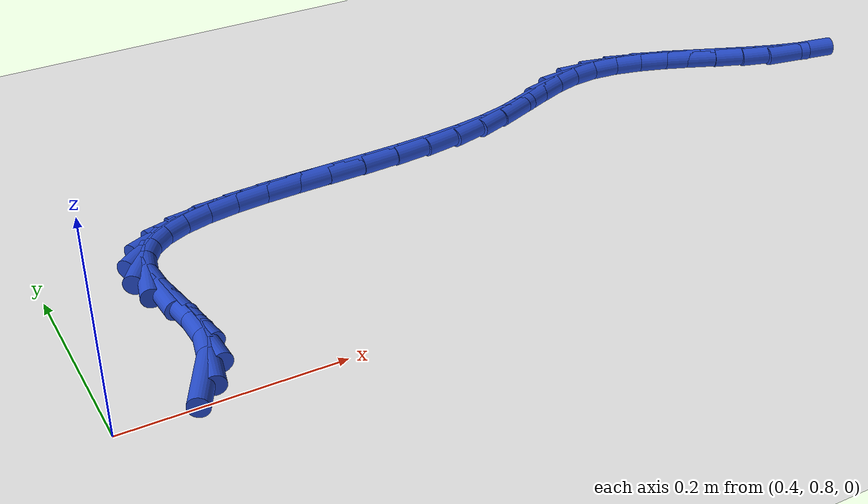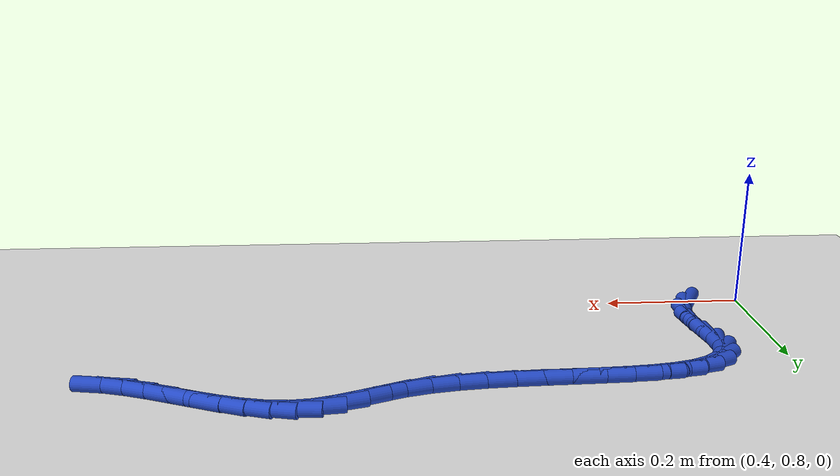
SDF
<sdf version="1.6">
 <world name="default">
  <model name="ground_plane">
   <static>1</static>
   <link name="link">
    <collision name="collision">
     <geometry><plane><normal>0 0 1</normal><size>100 100</size></plane></geometry>
     <surface><friction><ode><mu>100</mu><mu2>50</mu2></ode></friction></surface>
    </collision>
    <visual name="visual">
     <cast_shadows>0</cast_shadows>
     <geometry><plane><normal>0 0 1</normal><size>100 100</size></plane></geometry>
     <material>
      <script><uri>file://media/materials/scripts/gazebo.material</uri><name>Gazebo/WhiteGlow</name></script>
     </material>
    </visual>
   </link>
  </model>
  <model name="line">
   <link name="link_34">
    <pose>0.48436458336159793 0.8243326907768579 0.01 0 1.57 1.0998703822961402</pose>
    <collision name="collision">
     <geometry><cylinder><radius>0.01</radius><length>0.08</length></cylinder></geometry>
    </collision>
    <visual name="visual">
     <material>
      <script><name>Gazebo/Blue</name><uri>file://media/materials/scripts/gazebo.material</uri></script>
     </material>
     <geometry><cylinder><radius>0.01</radius><length>0.08</length></cylinder></geometry>
    </visual>
   </link>
   <link name="link_35">
    <pose>0.4961234506910881 0.8474286329743677 0.01 0 1.57 1.3525043392201155</pose>
    <collision name="collision">
     <geometry><cylinder><radius>0.01</radius><length>0.08</length></cylinder></geometry>
    </collision>
    <visual name="visual">
     <material>
      <script><name>Gazebo/Blue</name><uri>file://media/materials/scripts/gazebo.material</uri></script>
     </material>
     <geometry><cylinder><radius>0.01</radius><length>0.08</length></cylinder></geometry>
    </visual>
   </link>
   <link name="link_36">
    <pose>0.5018533617048805 0.8732592092014854 0.01 0 1.57 -1.5458113672183387</pose>
    <collision name="collision">
     <geometry><cylinder><radius>0.01</radius><length>0.08</length></cylinder></geometry>
    </collision>
    <visual name="visual">
     <material>
      <script><name>Gazebo/Blue</name><uri>file://media/materials/scripts/gazebo.material</uri></script>
     </material>
     <geometry><cylinder><radius>0.01</radius><length>0.08</length></cylinder></geometry>
    </visual>
   </link>
   <link name="link_37">
    <pose>0.5011351351879454 0.9019995823038233 0.01 0 1.57 -1.4193034929931134</pose>
    <collision name="collision">
     <geometry><cylinder><radius>0.01</radius><length>0.08</length></cylinder></geometry>
    </collision>
    <visual name="visual">
     <material>
      <script><name>Gazebo/Blue</name><uri>file://media/materials/scripts/gazebo.material</uri></script>
     </material>
     <geometry><cylinder><radius>0.01</radius><length>0.08</length></cylinder></geometry>
    </visual>
   </link>
   <link name="link_38">
    <pose>0.4965393665960186 0.9321036922990686 0.01 0 1.57 -1.409940151759371</pose>
    <collision name="collision">
     <geometry><cylinder><radius>0.01</radius><length>0.08</length></cylinder></geometry>
    </collision>
    <visual name="visual">
     <material>
      <script><name>Gazebo/Blue</name><uri>file://media/materials/scripts/gazebo.material</uri></script>
     </material>
     <geometry><cylinder><radius>0.01</radius><length>0.08</length></cylinder></geometry>
    </visual>
   </link>
   <link name="link_39">
    <pose>0.4917922642409274 0.9613601896374306 0.01 0 1.57 -1.5261320822971656</pose>
    <collision name="collision">
     <geometry><cylinder><radius>0.01</radius><length>0.08</length></cylinder></geometry>
    </collision>
    <visual name="visual">
     <material>
      <script><name>Gazebo/Blue</name><uri>file://media/materials/scripts/gazebo.material</uri></script>
     </material>
     <geometry><cylinder><radius>0.01</radius><length>0.08</length></cylinder></geometry>
    </visual>
   </link>
   <link name="link_40">
    <pose>0.4906214256611757 0.9875569813389942 0.01 0 1.57 1.3373394361693471</pose>
    <collision name="collision">
     <geometry><cylinder><radius>0.01</radius><length>0.08</length></cylinder></geometry>
    </collision>
    <visual name="visual">
     <material>
      <script><name>Gazebo/Blue</name><uri>file://media/materials/scripts/gazebo.material</uri></script>
     </material>
     <geometry><cylinder><radius>0.01</radius><length>0.08</length></cylinder></geometry>
    </visual>
   </link>
   <link name="link_41">
    <pose>0.4957473855238994 1.0091134001234727 0.01 0 1.57 0.9887500694723694</pose>
    <collision name="collision">
     <geometry><cylinder><radius>0.01</radius><length>0.08</length></cylinder></geometry>
    </collision>
    <visual name="visual">
     <material>
      <script><name>Gazebo/Blue</name><uri>file://media/materials/scripts/gazebo.material</uri></script>
     </material>
     <geometry><cylinder><radius>0.01</radius><length>0.08</length></cylinder></geometry>
    </visual>
   </link>
   <link name="link_42">
    <pose>0.5070228781272357 1.0262468817941888 0.01 0 1.57 0.6685071533585554</pose>
    <collision name="collision">
     <geometry><cylinder><radius>0.01</radius><length>0.08</length></cylinder></geometry>
    </collision>
    <visual name="visual">
     <material>
      <script><name>Gazebo/Blue</name><uri>file://media/materials/scripts/gazebo.material</uri></script>
     </material>
     <geometry><cylinder><radius>0.01</radius><length>0.08</length></cylinder></geometry>
    </visual>
   </link>
   <link name="link_43">
    <pose>0.5237935432515232 1.0394928090471414 0.01 0 1.57 0.42932225369989446</pose>
    <collision name="collision">
     <geometry><cylinder><radius>0.01</radius><length>0.08</length></cylinder></geometry>
    </collision>
    <visual name="visual">
     <material>
      <script><name>Gazebo/Blue</name><uri>file://media/materials/scripts/gazebo.material</uri></script>
     </material>
     <geometry><cylinder><radius>0.01</radius><length>0.08</length></cylinder></geometry>
    </visual>
   </link>
   <link name="link_44">
    <pose>0.5454050206771001 1.049386564578328 0.01 0 1.57 0.26773673978531026</pose>
    <collision name="collision">
     <geometry><cylinder><radius>0.01</radius><length>0.08</length></cylinder></geometry>
    </collision>
    <visual name="visual">
     <material>
      <script><name>Gazebo/Blue</name><uri>file://media/materials/scripts/gazebo.material</uri></script>
     </material>
     <geometry><cylinder><radius>0.01</radius><length>0.08</length></cylinder></geometry>
    </visual>
   </link>
   <link name="link_45">
    <pose>0.5712029501843049 1.0564635310837467 0.01 0 1.57 0.16206939965983158</pose>
    <collision name="collision">
     <geometry><cylinder><radius>0.01</radius><length>0.08</length></cylinder></geometry>
    </collision>
    <visual name="visual">
     <material>
      <script><name>Gazebo/Blue</name><uri>file://media/materials/scripts/gazebo.material</uri></script>
     </material>
     <geometry><cylinder><radius>0.01</radius><length>0.08</length></cylinder></geometry>
    </visual>
   </link>
   <link name="link_46">
    <pose>0.6005329715534757 1.0612590912593953 0.01 0 1.57 0.09440187548298841</pose>
    <collision name="collision">
     <geometry><cylinder><radius>0.01</radius><length>0.08</length></cylinder></geometry>
    </collision>
    <visual name="visual">
     <material>
      <script><name>Gazebo/Blue</name><uri>file://media/materials/scripts/gazebo.material</uri></script>
     </material>
     <geometry><cylinder><radius>0.01</radius><length>0.08</length></cylinder></geometry>
    </visual>
   </link>
   <link name="link_47">
    <pose>0.6327407245649517 1.0643086278012726 0.01 0 1.57 0.05335725142116658</pose>
    <collision name="collision">
     <geometry><cylinder><radius>0.01</radius><length>0.08</length></cylinder></geometry>
    </collision>
    <visual name="visual">
     <material>
      <script><name>Gazebo/Blue</name><uri>file://media/materials/scripts/gazebo.material</uri></script>
     </material>
     <geometry><cylinder><radius>0.01</radius><length>0.08</length></cylinder></geometry>
    </visual>
   </link>
   <link name="link_48">
    <pose>0.6671718489990706 1.066147523405376 0.01 0 1.57 0.032311888419340885</pose>
    <collision name="collision">
     <geometry><cylinder><radius>0.01</radius><length>0.08</length></cylinder></geometry>
    </collision>
    <visual name="visual">
     <material>
      <script><name>Gazebo/Blue</name><uri>file://media/materials/scripts/gazebo.material</uri></script>
     </material>
     <geometry><cylinder><radius>0.01</radius><length>0.08</length></cylinder></geometry>
    </visual>
   </link>
   <link name="link_49">
    <pose>0.703171984636171 1.0673111607677042 0.01 0 1.57 0.02772600261981497</pose>
    <collision name="collision">
     <geometry><cylinder><radius>0.01</radius><length>0.08</length></cylinder></geometry>
    </collision>
    <visual name="visual">
     <material>
      <script><name>Gazebo/Blue</name><uri>file://media/materials/scripts/gazebo.material</uri></script>
     </material>
     <geometry><cylinder><radius>0.01</radius><length>0.08</length></cylinder></geometry>
    </visual>
   </link>
   <link name="link_50">
    <pose>0.7400867712565914 1.0683349225842542 0.01 0 1.57 0.03815943674371229</pose>
    <collision name="collision">
     <geometry><cylinder><radius>0.01</radius><length>0.08</length></cylinder></geometry>
    </collision>
    <visual name="visual">
     <material>
      <script><name>Gazebo/Blue</name><uri>file://media/materials/scripts/gazebo.material</uri></script>
     </material>
     <geometry><cylinder><radius>0.01</radius><length>0.08</length></cylinder></geometry>
    </visual>
   </link>
   <link name="link_51">
    <pose>0.77726184864067 1.0697541915510254 0.01 0 1.57 0.06380924363371977</pose>
    <collision name="collision">
     <geometry><cylinder><radius>0.01</radius><length>0.08</length></cylinder></geometry>
    </collision>
    <visual name="visual">
     <material>
      <script><name>Gazebo/Blue</name><uri>file://media/materials/scripts/gazebo.material</uri></script>
     </material>
     <geometry><cylinder><radius>0.01</radius><length>0.08</length></cylinder></geometry>
    </visual>
   </link>
   <link name="link_52">
    <pose>0.8140428565687454 1.0721043503640149 0.01 0 1.57 0.10640200698705973</pose>
    <collision name="collision">
     <geometry><cylinder><radius>0.01</radius><length>0.08</length></cylinder></geometry>
    </collision>
    <visual name="visual">
     <material>
      <script><name>Gazebo/Blue</name><uri>file://media/materials/scripts/gazebo.material</uri></script>
     </material>
     <geometry><cylinder><radius>0.01</radius><length>0.08</length></cylinder></geometry>
    </visual>
   </link>
   <link name="link_53">
    <pose>0.8497754348211561 1.075920781719221 0.01 0 1.57 0.16933315072372382</pose>
    <collision name="collision">
     <geometry><cylinder><radius>0.01</radius><length>0.08</length></cylinder></geometry>
    </collision>
    <visual name="visual">
     <material>
      <script><name>Gazebo/Blue</name><uri>file://media/materials/scripts/gazebo.material</uri></script>
     </material>
     <geometry><cylinder><radius>0.01</radius><length>0.08</length></cylinder></geometry>
    </visual>
   </link>
   <link name="link_54">
    <pose>0.8838052231782404 1.0817388683126417 0.01 0 1.57 0.25767439060480485</pose>
    <collision name="collision">
     <geometry><cylinder><radius>0.01</radius><length>0.08</length></cylinder></geometry>
    </collision>
    <visual name="visual">
     <material>
      <script><name>Gazebo/Blue</name><uri>file://media/materials/scripts/gazebo.material</uri></script>
     </material>
     <geometry><cylinder><radius>0.01</radius><length>0.08</length></cylinder></geometry>
    </visual>
   </link>
   <link name="link_55">
    <pose>0.9154824358953043 1.0900868557273622 0.01 0 1.57 0.3502906657793422</pose>
    <collision name="collision">
     <geometry><cylinder><radius>0.01</radius><length>0.08</length></cylinder></geometry>
    </collision>
    <visual name="visual">
     <material>
      <script><name>Gazebo/Blue</name><uri>file://media/materials/scripts/gazebo.material</uri></script>
     </material>
     <geometry><cylinder><radius>0.01</radius><length>0.08</length></cylinder></geometry>
    </visual>
   </link>
   <link name="link_56">
    <pose>0.9446400292977614 1.100739813567409 0.01 0 1.57 0.3923252835983964</pose>
    <collision name="collision">
     <geometry><cylinder><radius>0.01</radius><length>0.08</length></cylinder></geometry>
    </collision>
    <visual name="visual">
     <material>
      <script><name>Gazebo/Blue</name><uri>file://media/materials/scripts/gazebo.material</uri></script>
     </material>
     <geometry><cylinder><radius>0.01</radius><length>0.08</length></cylinder></geometry>
    </visual>
   </link>
   <link name="link_57">
    <pose>0.9720126763766781 1.1120659497304475 0.01 0 1.57 0.36886892560150697</pose>
    <collision name="collision">
     <geometry><cylinder><radius>0.01</radius><length>0.08</length></cylinder></geometry>
    </collision>
    <visual name="visual">
     <material>
      <script><name>Gazebo/Blue</name><uri>file://media/materials/scripts/gazebo.material</uri></script>
     </material>
     <geometry><cylinder><radius>0.01</radius><length>0.08</length></cylinder></geometry>
    </visual>
   </link>
   <link name="link_58">
    <pose>0.9984338189197063 1.1222793726691698 0.01 0 1.57 0.271243554786539</pose>
    <collision name="collision">
     <geometry><cylinder><radius>0.01</radius><length>0.08</length></cylinder></geometry>
    </collision>
    <visual name="visual">
     <material>
      <script><name>Gazebo/Blue</name><uri>file://media/materials/scripts/gazebo.material</uri></script>
     </material>
     <geometry><cylinder><radius>0.01</radius><length>0.08</length></cylinder></geometry>
    </visual>
   </link>
   <link name="link_59">
    <pose>1.024736898714498 1.1295941908362683 0.01 0 1.57 0.09850898987949476</pose>
    <collision name="collision">
     <geometry><cylinder><radius>0.01</radius><length>0.08</length></cylinder></geometry>
    </collision>
    <visual name="visual">
     <material>
      <script><name>Gazebo/Blue</name><uri>file://media/materials/scripts/gazebo.material</uri></script>
     </material>
     <geometry><cylinder><radius>0.01</radius><length>0.08</length></cylinder></geometry>
    </visual>
   </link>
   <link name="link_60">
    <pose>1.0517407963188505 1.1322629556854245 0.01 0 1.57 -0.08786865842453788</pose>
    <collision name="collision">
     <geometry><cylinder><radius>0.01</radius><length>0.08</length></cylinder></geometry>
    </collision>
    <visual name="visual">
     <material>
      <script><name>Gazebo/Blue</name><uri>file://media/materials/scripts/gazebo.material</uri></script>
     </material>
     <geometry><cylinder><radius>0.01</radius><length>0.08</length></cylinder></geometry>
    </visual>
   </link>
   <link name="link_61">
    <pose>1.0797894950598994 1.1297919915240902 0.01 0 1.57 -0.2248464791715386</pose>
    <collision name="collision">
     <geometry><cylinder><radius>0.01</radius><length>0.08</length></cylinder></geometry>
    </collision>
    <visual name="visual">
     <material>
      <script><name>Gazebo/Blue</name><uri>file://media/materials/scripts/gazebo.material</uri></script>
     </material>
     <geometry><cylinder><radius>0.01</radius><length>0.08</length></cylinder></geometry>
    </visual>
   </link>
   <link name="link_62">
    <pose>1.1086581710681542 1.1231893265571269 0.01 0 1.57 -0.3164723829564241</pose>
    <collision name="collision">
     <geometry><cylinder><radius>0.01</radius><length>0.08</length></cylinder></geometry>
    </collision>
    <visual name="visual">
     <material>
      <script><name>Gazebo/Blue</name><uri>file://media/materials/scripts/gazebo.material</uri></script>
     </material>
     <geometry><cylinder><radius>0.01</radius><length>0.08</length></cylinder></geometry>
    </visual>
   </link>
   <link name="link_63">
    <pose>1.13808846534019 1.113551524861714 0.01 0 1.57 -0.37128052685726864</pose>
    <collision name="collision">
     <geometry><cylinder><radius>0.01</radius><length>0.08</length></cylinder></geometry>
    </collision>
    <visual name="visual">
     <material>
      <script><name>Gazebo/Blue</name><uri>file://media/materials/scripts/gazebo.material</uri></script>
     </material>
     <geometry><cylinder><radius>0.01</radius><length>0.08</length></cylinder></geometry>
    </visual>
   </link>
   <link name="link_64">
    <pose>1.1678220188725787 1.1019751505150315 0.01 0 1.57 -0.39509707080164025</pose>
    <collision name="collision">
     <geometry><cylinder><radius>0.01</radius><length>0.08</length></cylinder></geometry>
    </collision>
    <visual name="visual">
     <material>
      <script><name>Gazebo/Blue</name><uri>file://media/materials/scripts/gazebo.material</uri></script>
     </material>
     <geometry><cylinder><radius>0.01</radius><length>0.08</length></cylinder></geometry>
    </visual>
   </link>
   <link name="link_65">
    <pose>1.1976004726618943 1.0895567675942597 0.01 0 1.57 -0.39031797742672675</pose>
    <collision name="collision">
     <geometry><cylinder><radius>0.01</radius><length>0.08</length></cylinder></geometry>
    </collision>
    <visual name="visual">
     <material>
      <script><name>Gazebo/Blue</name><uri>file://media/materials/scripts/gazebo.material</uri></script>
     </material>
     <geometry><cylinder><radius>0.01</radius><length>0.08</length></cylinder></geometry>
    </visual>
   </link>
   <link name="link_66">
    <pose>1.2271654677047104 1.0773929401765774 0.01 0 1.57 -0.3558373549414743</pose>
    <collision name="collision">
     <geometry><cylinder><radius>0.01</radius><length>0.08</length></cylinder></geometry>
    </collision>
    <visual name="visual">
     <material>
      <script><name>Gazebo/Blue</name><uri>file://media/materials/scripts/gazebo.material</uri></script>
     </material>
     <geometry><cylinder><radius>0.01</radius><length>0.08</length></cylinder></geometry>
    </visual>
   </link>
   <link name="link_67">
    <pose>1.2562586449975999 1.0665802323391647 0.01 0 1.57 -0.28679650120734995</pose>
    <collision name="collision">
     <geometry><cylinder><radius>0.01</radius><length>0.08</length></cylinder></geometry>
    </collision>
    <visual name="visual">
     <material>
      <script><name>Gazebo/Blue</name><uri>file://media/materials/scripts/gazebo.material</uri></script>
     </material>
     <geometry><cylinder><radius>0.01</radius><length>0.08</length></cylinder></geometry>
    </visual>
   </link>
   <link name="link_68">
    <pose>1.284621645537137 1.0582152081592013 0.01 0 1.57 -0.1743174996396374</pose>
    <collision name="collision">
     <geometry><cylinder><radius>0.01</radius><length>0.08</length></cylinder></geometry>
    </collision>
    <visual name="visual">
     <material>
      <script><name>Gazebo/Blue</name><uri>file://media/materials/scripts/gazebo.material</uri></script>
     </material>
     <geometry><cylinder><radius>0.01</radius><length>0.08</length></cylinder></geometry>
    </visual>
   </link>
  </model>
 </world>
</sdf>
